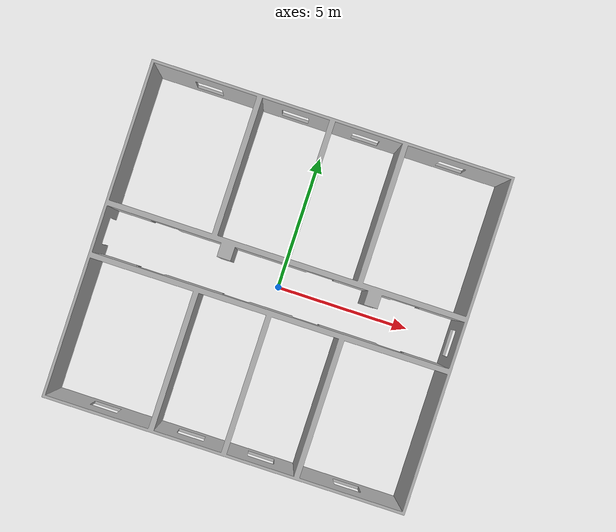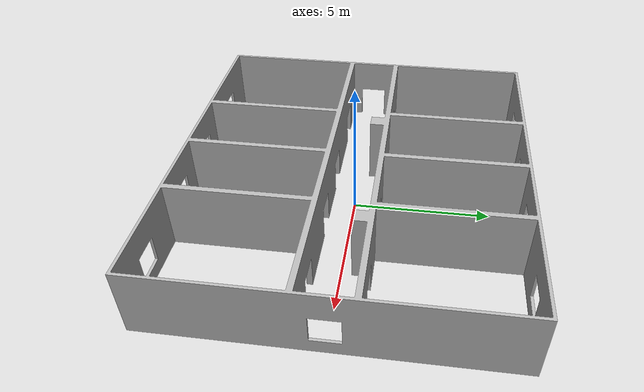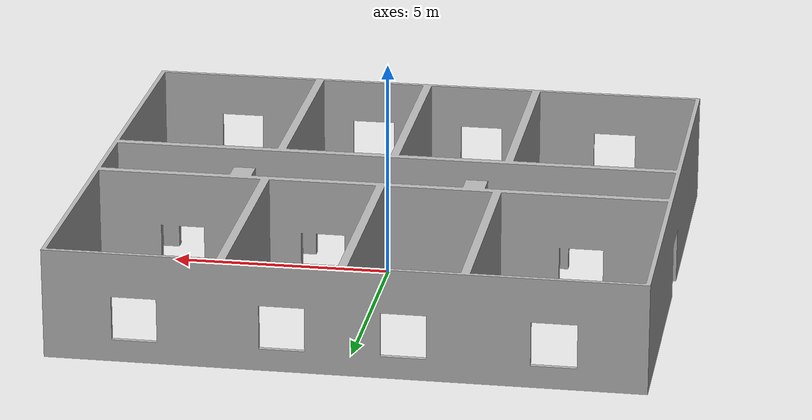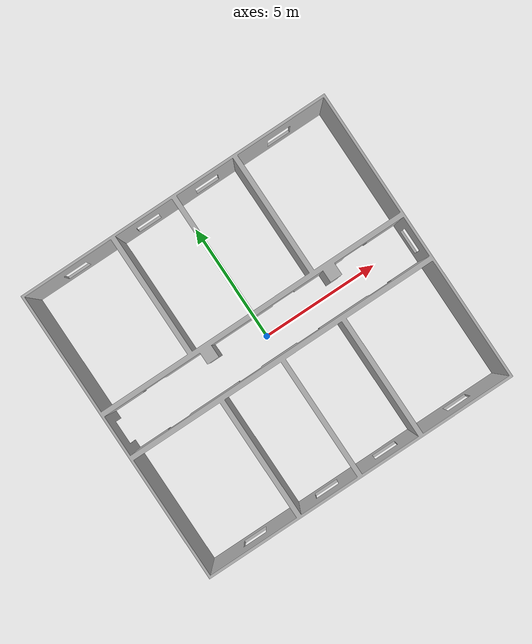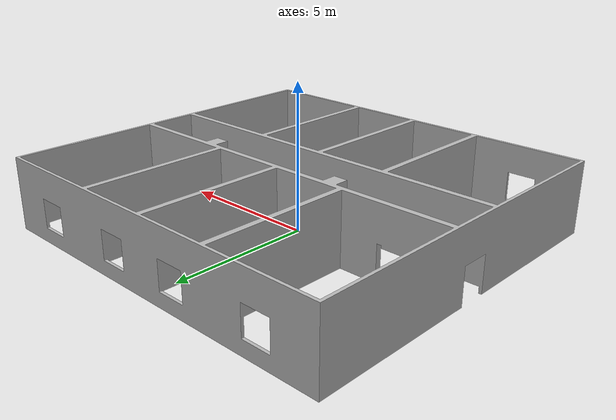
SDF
<?xml version='1.0' encoding='utf-8'?>
<sdf version="1.6">
  <world name="secoro_team_2">
    <gravity>0 0 -9.8</gravity>

    <physics default="0" name="default_physics" type="ode">
      <max_step_size>0.001</max_step_size>
      <real_time_factor>1</real_time_factor>
      <real_time_update_rate>1000</real_time_update_rate>
    </physics>
    <model name='ground_plane'>
      <static>true</static>
      <link name='link'>
        <collision name='collision'>
          <geometry>
            <plane>
              <normal>0.0 0.0 1</normal>
              <size>1 1</size>
            </plane>
          </geometry>
        </collision>
      </link>
      <pose>0 0 0 0 0 0</pose>
    </model>

    <include>
      <uri>model://secoro_team_2</uri>
      <static>true</static>
      <pose>-0.0 0.0 0.0 0.0 0.0 0.0</pose>
    </include>

  </world>
</sdf>

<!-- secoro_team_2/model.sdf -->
<sdf version="1.6">
  <model name="secoro_team_2">
    <link name="link">
      <visual name="visual">
	    <geometry>
          <mesh>
            <uri>model://3d-mesh/secoro_team_2.stl</uri>
          </mesh>
        </geometry>
      </visual>
      <collision name="collision">
        <geometry>
          <mesh>
            <uri>model://3d-mesh/secoro_team_2.stl</uri>
          </mesh>
        </geometry>
      </collision>
    </link>
  <static>1</static>
  </model>
</sdf>
